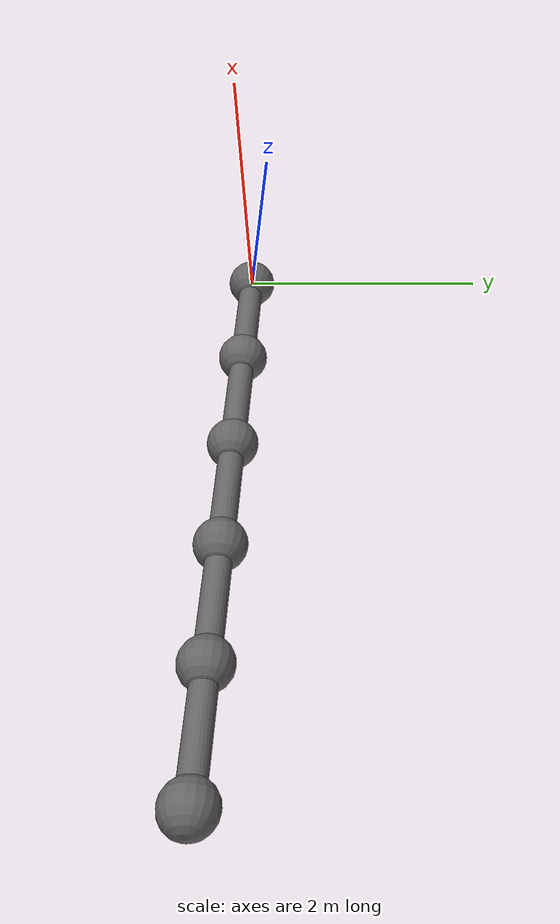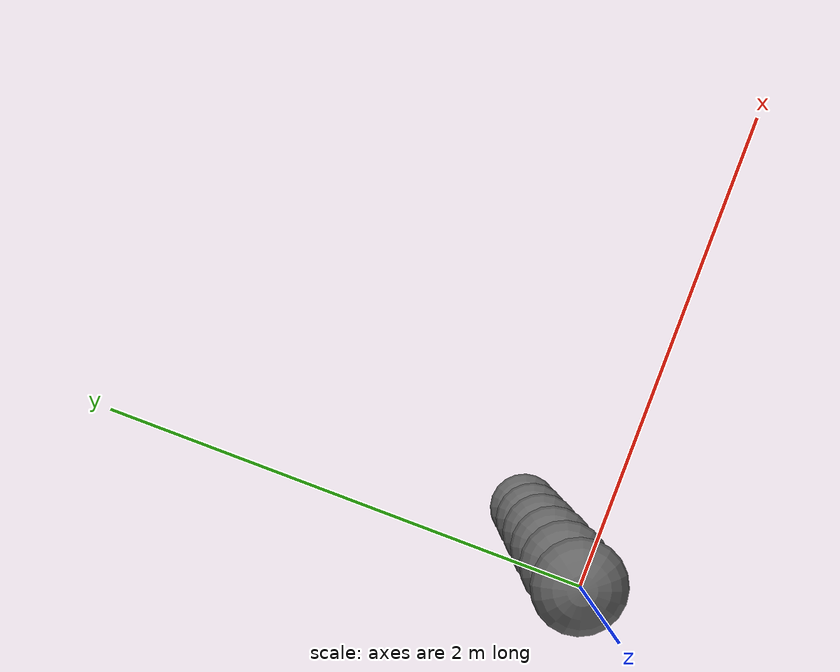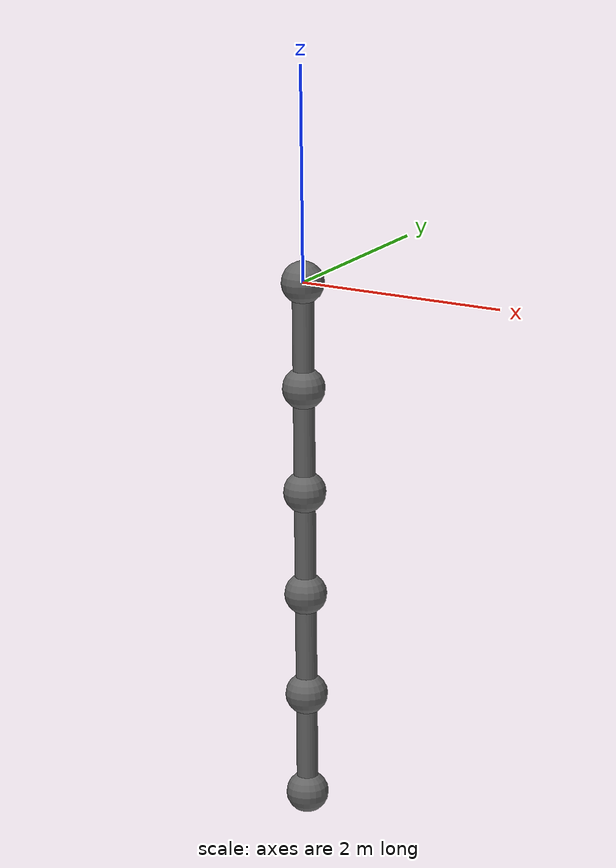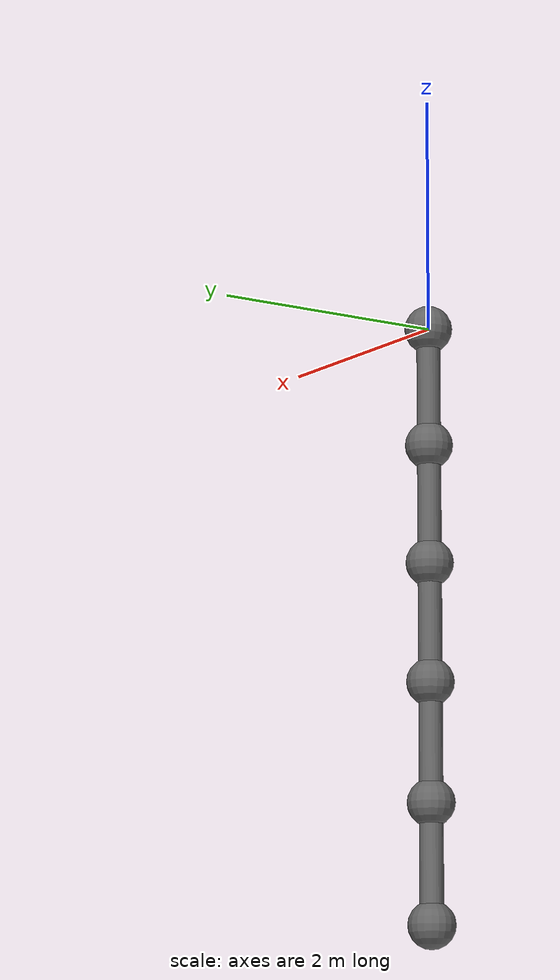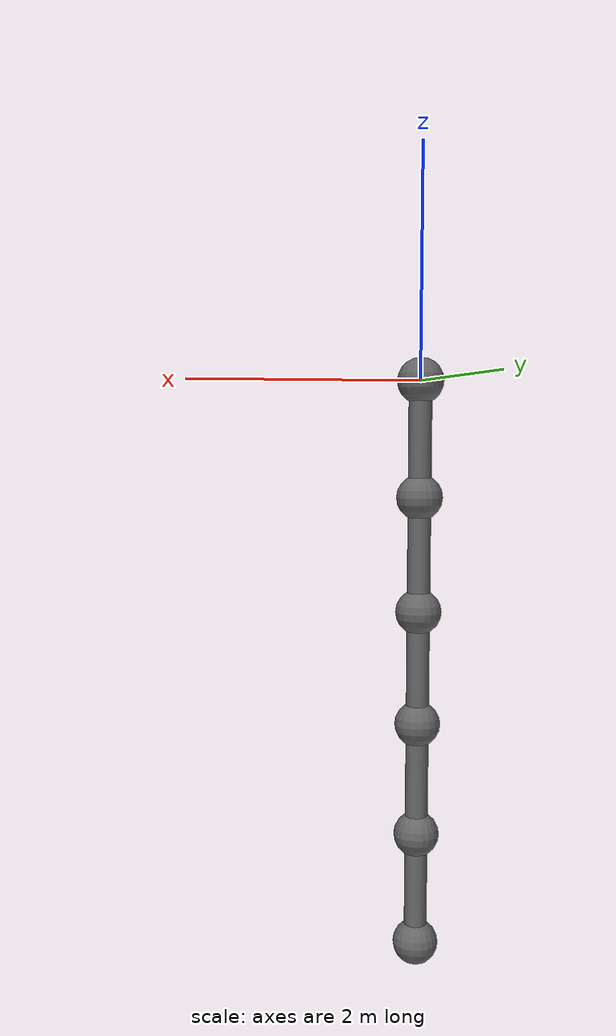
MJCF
<mujoco model="5DOF_snakebot">

  <compiler inertiafromgeom = "auto" angle = "radian"/>

   <!-- (semi-) implicit Euler method was used for the integrator with time step of 0.1ms -->
	<option timestep='0.0001' iterations='50' integrator='Euler' collision='all' gravity="0 0 -9.81"/>

  <asset>
    <!-- Texture of the surrounding sky box
         setting everything as white-ish color for better visualization -->
     <texture type="skybox"
              builtin="flat"
              rgb1="1 1 1"
              rgb2="1 1 1"
              width="100"
              height="100"/>

        <material name="blue"  rgba="0 0 1 1" />
        <material name="green" rgba="0 1 0 1" />
        <material name="red"   rgba="1 0 0 1" />
        <material name="white" rgba="1 1 1 1" />
        <material name="grey"  rgba=".4 .4 .4 1" />

  </asset>

  <worldbody>

    <body name='camera' pos='0 0 0'>
		  <camera name='myCamera' pos='0.7975 -3.19 -0.4785' euler='1.5707 0 0'/>
  	</body>

		<body name='body_link1' pos='0 0 0' euler='0 0 0'>
      <joint name='joint_1' ref='0' type='hinge' stiffness='0' pos='0 0 0' axis='0 -1 0' />
			<inertial pos='0 0 -0.5' mass='1' diaginertia='1.0 1.0 1.0'/>
      <site pos='0 0 -0.5' name='site_COM1' />
			<geom name='geom_joint1' type='sphere' pos='0 0 0' material='grey' size='0.2' mass='0'/>
			<geom type='cylinder' fromto='0 0 0 0 0 -1' material='grey' size='0.1' mass='0'/>

			<body name='body_link2' pos='0 0 -1' euler='0 0 0'>
        <joint name='joint_2' ref='0' type='hinge' stiffness='0' pos='0 0 0' axis='0 -1 0'/>
				<inertial pos='0 0 -0.5' mass='1.0' diaginertia='1.0 1.0 1.0'/>
        <site pos='0 0 -0.5' name='site_COM2' />
				<geom name='geom_joint2'       type='sphere' pos='0 0 0' material='grey'  size='0.2' mass='0'/>
				<geom type='cylinder' fromto='0 0 0 0 0 -1.0'  material='grey'  size='0.1' mass='0'/>

        <body name='body_link3' pos='0 0 -1' euler='0 0 0'>
          <joint name='joint_3' ref='0' type='hinge' stiffness='0' pos='0 0 0' axis='0 -1 0'/>
          <inertial pos='0 0 -0.5' mass='1.0' diaginertia='1.0 1.0 1.0'/>
          <site pos='0 0 -0.5' name='site_COM3' />
          <geom name='geom_joint3'       type='sphere' pos='0 0 0' material='grey'  size='0.2' mass='0'/>
          <geom type='cylinder' fromto='0 0 0 0 0 -1.0'  material='grey'  size='0.1' mass='0'/>

          <body name='body_link4' pos='0 0 -1' euler='0 0 0'>
            <joint name='joint_4' ref='0' type='hinge' stiffness='0' pos='0 0 0' axis='0 -1 0'/>
            <inertial pos='0 0 -0.5' mass='1.0' diaginertia='1.0 1.0 1.0'/>
            <site pos='0 0 -0.5' name='site_COM4' />
            <geom name='geom_joint4'       type='sphere' pos='0 0 0' material='grey'  size='0.2' mass='0'/>
            <geom type='cylinder' fromto='0 0 0 0 0 -1.0'  material='grey'  size='0.1' mass='0'/>

            <body name='body_link5' pos='0 0 -1' euler='0 0 0'>
              <joint name='joint_5' ref='0' type='hinge' stiffness='0' pos='0 0 0' axis='0 -1 0'/>
              <inertial pos='0 0 -0.5' mass='1.0' diaginertia='1.0 1.0 1.0'/>
              <site pos='0 0 -0.5' name='site_COM5' />
              <geom name='geom_joint5'       type='sphere' pos='0 0 0' material='grey'  size='0.2' mass='0'/>
              <geom type='cylinder' fromto='0 0 0 0 0 -1.0'  material='grey'  size='0.1' mass='0'/>
				      <geom name='geom_EE' type='sphere' pos='0 0 -1.0' material='grey' size='0.2' mass='0'/>
            </body>
          </body>
        </body>
      </body>
  </body>

  </worldbody>

  <actuator>
		  <motor joint='joint_1' name='motor_joint_1' forcelimited='false'/>
		  <motor joint='joint_2' name='motor_joint_2' forcelimited='false'/>
      <motor joint='joint_3' name='motor_joint_3' forcelimited='false'/>
      <motor joint='joint_4' name='motor_joint_4' forcelimited='false'/>
      <motor joint='joint_5' name='motor_joint_5' forcelimited='false'/>
  </actuator>

</mujoco>
